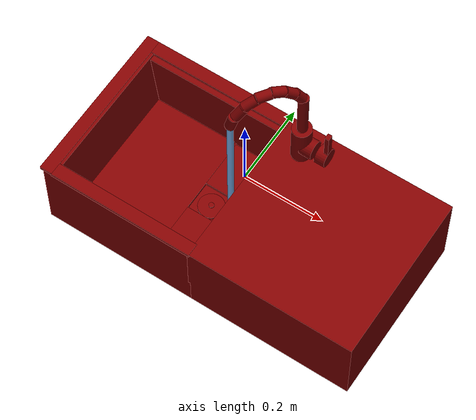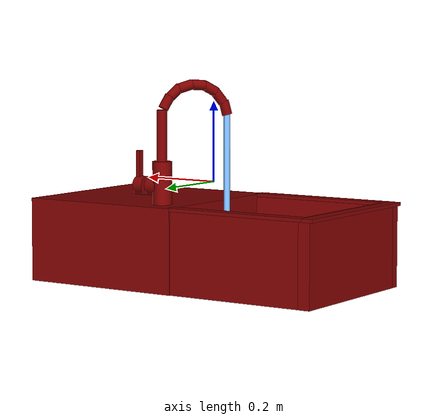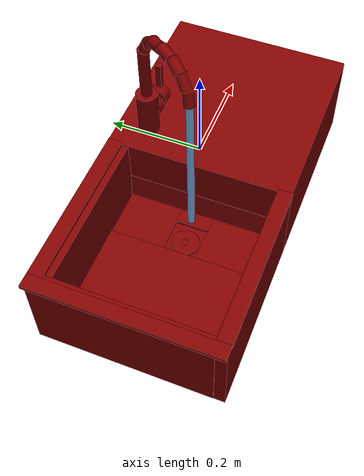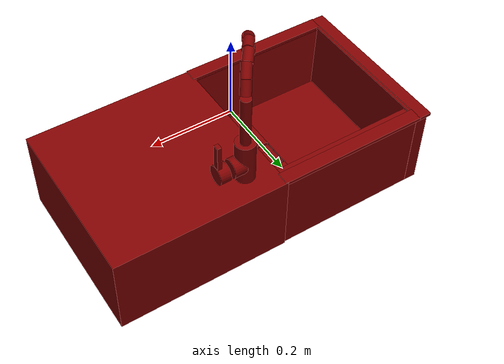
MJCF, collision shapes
<mujoco model="model">
  <compiler angle="radian"/>
  <asset>
    <mesh file="visuals/handle.obj" name="handle_vis"/>
    <mesh file="visuals/Body001.obj" name="Body001_vis"/>
    <mesh file="visuals/Funnel001.obj" name="Funnel001_vis"/>
    <mesh file="visuals/spout.obj" name="spout_vis"/>
    <texture file="visuals/T_BC001.png" name="Body001_material" type="2d"/>
    <material name="Body001_material" rgba="1 1 1 1.0" texture="Body001_material" shininess="-1023.0" specular="0.3103448502657381"/>
    <texture file="visuals/T_BC001.png" name="handle_material" type="2d"/>
    <material name="handle_material" rgba="1 1 1 1.0" texture="handle_material" shininess="-1023.0" specular="0.3103448502657381"/>
    <texture file="visuals/T_BC001.png" name="Funnel001_material" type="2d"/>
    <material name="Funnel001_material" rgba="1 1 1 1.0" texture="Funnel001_material" shininess="-1023.0" specular="0.3103448502657381"/>
    <texture file="visuals/T_BC001.png" name="spout_material" type="2d"/>
    <material name="spout_material" rgba="1 1 1 1.0" texture="spout_material" shininess="-1023.0" specular="0.3103448502657381"/>
  </asset>
  <default>
    <default class="visual">
      <geom conaffinity="0" contype="0" group="1" type="mesh"/>
    </default>
    <default class="collision">
      <geom group="0" rgba="0.5 0 0 0.5"/>
    </default>
    <default class="spawn">
      <geom group="0" rgba="1 1 1 0.5" contype="0" conaffinity="0"/>
      <site group="0" rgba="1 1 1 0.5"/>
    </default>
    <default class="region">
      <geom group="1" conaffinity="0" contype="0" rgba="0 1 0 0"/>
    </default>
  </default>
  <worldbody>
    <body>
      <body name="object">
        <geom mesh="Body001_vis" type="mesh" solimp="0.998 0.998 0.001" solref="0.001 1" density="100" friction="0.95 0.3 0.1" class="visual" material="Body001_material"/>
        <geom class="collision" type="box" pos="0.19810250401496887 0.0006572931306436658 -0.15044507384300232" size="0.2114952802658081 0.21052272617816925 0.10436909645795822" quat="1.0 0.0 0.0 0.0"/>
        <geom class="collision" type="box" pos="-0.24364592134952545 0.0004083472304046154 -0.2115687131881714" size="0.1117781400680542 0.16384579241275787 0.0037974840961396694" quat="1.0 0.0 0.0 0.0"/>
        <geom class="collision" type="box" pos="-0.36542341113090515 -0.0011765174567699432 -0.1261165738105774" size="0.08116210252046585 0.18408438563346863 0.0037975278683006763" quat="0.7442553043365479 5.1297952552431525e-09 0.6678952574729919 -5.129795699332362e-09"/>
        <geom class="collision" type="box" pos="-0.007687423378229141 -0.0011765167582780123 -0.1311330646276474" size="0.08116210252046585 0.1692085564136505 0.0037975285667926073" quat="0.6651034355163574 -5.485033316432464e-09 0.7467512488365173 5.485027987361946e-09"/>
        <geom class="collision" type="box" pos="-0.181856170296669 0.1703510284423828 -0.1310848891735077" size="0.19039635360240936 0.0072633614763617516 0.08124960213899612" quat="1.0 0.0 0.0 0.0"/>
        <geom class="collision" type="box" pos="-0.181856170296669 -0.17336688935756683 -0.13324297964572906" size="0.08116210252046585 0.189422145485878 0.0037975278683006763" quat="0.5207651257514954 -0.4783339202404022 0.47833052277565 0.520768940448761"/>
        <geom class="collision" type="box" pos="-0.39381712675094604 0.0006577976746484637 -0.048643674701452255" size="0.015872063115239143 0.21052198112010956 0.004211253486573696" quat="1.0 0.0 0.0 0.0"/>
        <geom class="collision" type="box" pos="-0.1935165971517563 0.1948430985212326 -0.04864371940493584" size="0.18591824173927307 0.016336919739842415 0.004211256746202707" quat="1.0 0.0 0.0 0.0"/>
        <geom class="collision" type="box" pos="-0.1935165822505951 -0.19478900730609894 -0.04864370822906494" size="0.185918390750885 0.01639101654291153 0.004211264196783304" quat="1.0 0.0 0.0 0.0"/>
        <geom class="collision" type="box" pos="-0.07598918676376343 0.09848657250404358 -0.2115687131881714" size="0.055579718202352524 0.06272169202566147 0.0037975013256073" quat="1.0 0.0 0.0 0.0"/>
        <geom class="collision" type="box" pos="-0.07533976435661316 -0.10054149478673935 -0.2115687131881714" size="0.056863777339458466 0.06096493452787399 0.0037975048180669546" quat="1.0 0.0 0.0 0.0"/>
        <geom class="collision" type="box" pos="-0.03457501530647278 -0.0017817455809563398 -0.2115687131881714" size="0.020776523277163506 0.039048418402671814 0.00379752810113132" quat="1.0 0.0 0.0 0.0"/>
        <geom class="collision" type="cylinder" pos="0.055061761289834976 0.14301030337810516 0.006430691108107567" size="0.023840952664613724 0.052419181913137436" quat="1.0 0.0 0.0 0.0"/>
        <geom class="collision" type="cylinder" pos="0.07716879993677139 0.143133282661438 -0.0025164408143609762" size="0.02307364158332348 0.015233715064823627" quat="0.5004220604896545 0.5004235506057739 0.4995776116847992 0.4995760917663574"/>
        <geom class="collision" type="box" pos="-0.20456074178218842 -0.19431452453136444 -0.1532014012336731" size="0.19660836458206177 0.015550900250673294 0.10161294788122177" quat="1.0 0.0 0.0 0.0"/>
        <geom class="collision" type="box" pos="-0.386215478181839 0.011741876602172852 -0.15044479072093964" size="0.015550931915640831 0.19660836458206177 0.10436961054801941" quat="1.0 0.0 0.0 0.0"/>
        <geom class="collision" type="box" pos="-0.181856170296669 -0.17336688935756683 -0.13324297964572906" size="0.08116210252046585 0.189422145485878 0.0037975278683006763" quat="0.5207651257514954 -0.4783339202404022 0.47833052277565 0.520768940448761"/>
        <geom class="collision" type="box" pos="-0.19238713383674622 0.192376971244812 -0.15320132672786713" size="0.17902325093746185 0.015550900250673294 0.10161303728818893" quat="1.0 0.0 0.0 0.0"/>
        <geom class="collision" type="box" pos="-0.19629138708114624 -0.0008931457414291799 -0.2436342090368271" size="0.18299676477909088 0.1823423057794571 0.011180201545357704" quat="1.0 0.0 0.0 0.0"/>
        <body name="handle">
          <joint axis="1.0 0.0 0.0" pos="0.11060375720262527 0.14335699379444122 -0.0013434200081974268" limited="true" name="handle_joint_hinge_0" type="hinge" range="-0.7853981633974483 0.7853981633974483" damping="1" frictionloss="1" armature=".01" stiffness="0.05"/>
          <joint axis="0.0 1.0 0.0" pos="0.11060375720262527 0.14335699379444122 -0.0013434200081974268" limited="true" name="handle_joint_hinge_1" type="hinge" range="0.0 0.17453292519943295" damping="1" frictionloss="1" armature=".01" stiffness="0.05"/>
          <geom mesh="handle_vis" type="mesh" solimp="0.998 0.998 0.001" solref="0.001 1" density="100" friction="0.95 0.3 0.1" class="visual" material="handle_material"/>
          <geom class="collision" type="box" pos="0.12246750295162201 0.14353953301906586 0.0489458292722702" size="0.005380201619118452 0.0072771399281919 0.03366056829690933" quat="0.005368044134229422 1.637921656083563e-07 1.620445431171902e-07 0.9999855756759644"/>
          <geom class="collision" type="cylinder" pos="0.11523845046758652 0.143133282661438 -0.002516438951715827" size="0.02307402342557907 0.012829241342842579" quat="0.5004220604896545 0.5004235506057739 0.4995776116847992 0.4995760917663574"/>
        </body>
        <body name="Funnel001">
          <joint axis="0.0 0.0 1.0" pos="-0.09291927516460419 2.991328074131161e-08 -0.22760052978992462" limited="true" name="Funnel001_joint" range="0.0 0.1" type="slide" damping="1" frictionloss="1" armature=".01" stiffness="0.05"/>
          <geom mesh="Funnel001_vis" type="mesh" solimp="0.998 0.998 0.001" solref="0.001 1" density="100" friction="0.95 0.3 0.1" class="visual" material="Funnel001_material"/>
          <geom class="collision" type="cylinder" pos="-0.09297240525484085 -0.0006688658031634986 -0.2252407968044281" size="0.032473791390657425 0.0028554133605211973" quat="1.0 0.0 0.0 0.0"/>
          <geom class="collision" type="cylinder" pos="-0.09297240525484085 2.574268728494644e-05 -0.22443360090255737" size="0.006724902894347906 0.0052115218713879585" quat="1.0 0.0 0.0 0.0"/>
        </body>
        <body name="spout">
          <joint axis="0.0 0.0 1.0" pos="0.05574093014001846 0.143323615193367 0.1561349332332611" limited="true" name="spout_joint" range="-0.8726646259971648 0.8726646259971648" type="hinge" damping="1" frictionloss="1" armature=".01" stiffness="0.05"/>
          <site type="cylinder" rgba="0.5 0.75 1 1" size="0.0077989068813622 0.19345371425151825" pos="-0.041335925459861755 0.0048158299177885056 -0.01730324514210224" name="water"/>
          <geom mesh="spout_vis" type="mesh" solimp="0.998 0.998 0.001" solref="0.001 1" density="100" friction="0.95 0.3 0.1" class="visual" material="spout_material"/>
          <geom class="collision" type="cylinder" pos="0.055435098707675934 0.14338363707065582 0.12015889585018158" size="0.012510106898844242 0.06334994733333588" quat="1.0 0.0 0.0 0.0"/>
          <geom class="collision" type="cylinder" pos="0.04892068728804588 0.1322648823261261 0.20156915485858917" size="0.012510107830166817 0.01728254184126854" quat="0.931800365447998 0.16080592572689056 -0.197274312376976 0.2587902843952179"/>
          <geom class="collision" type="cylinder" pos="0.03677936643362045 0.1150531992316246 0.22561416029930115" size="0.012510106898844242 0.01728253997862339" quat="0.8792770504951477 0.24185658991336823 -0.3171517848968506 0.26036909222602844"/>
          <geom class="collision" type="cylinder" pos="0.019763942807912827 0.09475214779376984 0.23924283683300018" size="0.012510106898844242 0.01728254184126854" quat="0.7669440507888794 0.33295169472694397 -0.49313250184059143 0.24033382534980774"/>
          <geom class="collision" type="cylinder" pos="0.0017309656832367182 0.06800485402345657 0.24244147539138794" size="0.012510106898844242 0.01728254184126854" quat="0.6546440124511719 0.42956554889678955 -0.590735137462616 0.19479890167713165"/>
          <geom class="collision" type="cylinder" pos="-0.015269468538463116 0.04241623729467392 0.2337506115436554" size="0.012510106898844242 0.01728254184126854" quat="0.4891144633293152 0.5159124732017517 -0.6901617050170898 0.13519686460494995"/>
          <geom class="collision" type="cylinder" pos="-0.02829342521727085 0.021999400109052658 0.21385996043682098" size="0.012510106898844242 0.01728254184126854" quat="0.3158448338508606 0.5897110104560852 -0.7400115132331848 0.0697561502456665"/>
          <geom class="collision" type="cylinder" pos="-0.03916522487998009 0.008226079866290092 0.1853894144296646" size="0.012510106898844242 0.01728254184126854" quat="0.1277783215045929 0.6366448998451233 -0.7604933977127075 -0.0024071841035038233"/>
        </body>
        <geom class="region" name="reg_main" type="box" pos="-5.21540641784668e-08 0.0 -0.14962342381477356" size="0.40968915820121765 0.21118003129959106 0.10519099235534668"/>
        <geom class="region" name="reg_basin" type="box" pos="-0.18579809367656708 1.4901161193847656e-08 -0.13238994777202606" size="0.18732278048992157 0.17561125755310059 0.07931700348854065"/>
      </body>
    </body>
  </worldbody>
  <actuator>
    <motor name="handle_joint_hinge_0_actuator" joint="handle_joint_hinge_0" gear="10"/>
    <motor name="handle_joint_hinge_1_actuator" joint="handle_joint_hinge_1" gear="10"/>
    <motor name="Funnel001_joint_actuator" joint="Funnel001_joint" gear="10"/>
    <motor name="spout_joint_actuator" joint="spout_joint" gear="10"/>
  </actuator>
</mujoco>
